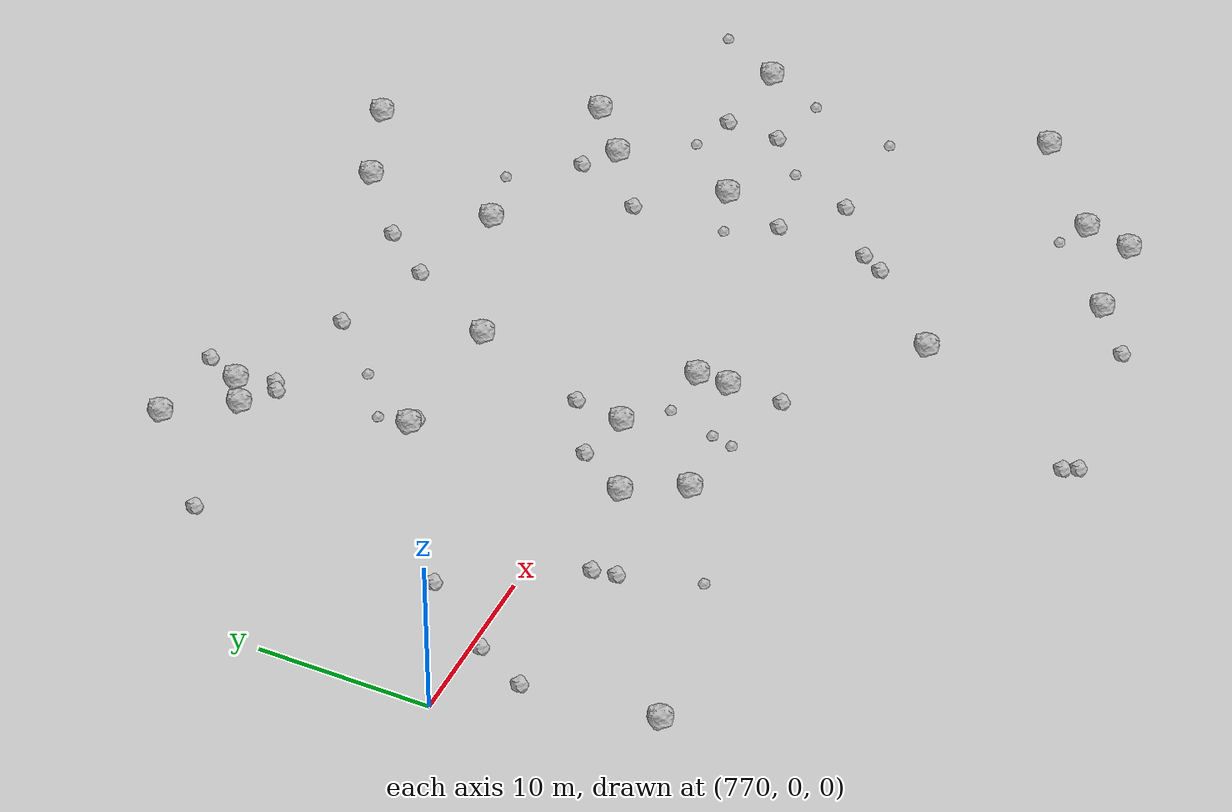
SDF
<sdf version="1.6">
 <world name="default">
  <include><uri>model://sun</uri></include>
  <model name="rock1_20_4">
   <include><uri>model://rock1</uri><pose>825.9372462978623 -11.901936286453378 0.5 0 0 0</pose></include>
  </model>
  <model name="rock1_20_5">
   <include><uri>model://rock1</uri><pose>799.17431795346 -3.766847467530223 0.5 0 0 0</pose></include>
  </model>
  <model name="rock1_20_6">
   <include><uri>model://rock1</uri><pose>788.9031942798171 -2.0370712036232135 0.5 0 0 0</pose></include>
  </model>
  <model name="rock1_20_7">
   <include><uri>model://rock1</uri><pose>783.8780220541647 23.51682267836717 0.5 0 0 0</pose></include>
  </model>
  <model name="rock1_20_8">
   <include><uri>model://rock1</uri><pose>797.2095511144377 10.40197938310444 0.5 0 0 0</pose></include>
  </model>
  <model name="rock1_20_9">
   <include><uri>model://rock1</uri><pose>788.8253533389924 10.740879912818485 0.5 0 0 0</pose></include>
  </model>
  <model name="rock1_20_10">
   <include><uri>model://rock1</uri><pose>814.6861556265256 10.380363406767259 0.5 0 0 0</pose></include>
  </model>
  <model name="rock1_20_11">
   <include><uri>model://rock1</uri><pose>824.8837802428865 5.216177160664145 0.5 0 0 0</pose></include>
  </model>
  <model name="rock1_20_12">
   <include><uri>model://rock1</uri><pose>812.1436011768263 24.353964463514984 0.5 0 0 0</pose></include>
  </model>
  <model name="rock1_20_13">
   <include><uri>model://rock1</uri><pose>793.9989345180148 0.2984716777066474 0.5 0 0 0</pose></include>
  </model>
  <model name="rock1_20_14">
   <include><uri>model://rock1</uri><pose>817.7944896294264 12.983634717679045 0.5 0 0 0</pose></include>
  </model>
  <model name="rock1_20_15">
   <include><uri>model://rock1</uri><pose>774.1349760354863 -11.403000369350082 0.5 0 0 0</pose></include>
  </model>
  <model name="rock1_20_16">
   <include><uri>model://rock1</uri><pose>806.7431501153142 -12.432699851491769 0.5 0 0 0</pose></include>
  </model>
  <model name="rock1_20_17">
   <include><uri>model://rock1</uri><pose>790.7628684323764 -5.3499854065378045 0.5 0 0 0</pose></include>
  </model>
  <model name="rock1_20_18">
   <include><uri>model://rock1</uri><pose>820.0622799877535 -16.63285302988337 0.5 0 0 0</pose></include>
  </model>
  <model name="rock1_20_19">
   <include><uri>model://rock1</uri><pose>814.0228085893079 -20.005498493433933 0.5 0 0 0</pose></include>
  </model>
  <model name="rock1_20_20">
   <include><uri>model://rock1</uri><pose>814.0504746604297 3.0988783384255285 0.5 0 0 0</pose></include>
  </model>
  <model name="rock1_20_21">
   <include><uri>model://rock1</uri><pose>786.3637751371069 19.95070177641515 0.5 0 0 0</pose></include>
  </model>
  <model name="rock1_20_22">
   <include><uri>model://rock1</uri><pose>806.375150658664 14.395136903612851 0.5 0 0 0</pose></include>
  </model>
  <model name="rock1_20_23">
   <include><uri>model://rock1</uri><pose>799.2174895933449 -1.8670236244198684 0.5 0 0 0</pose></include>
  </model>
  <model name="rock1_20_24">
   <include><uri>model://rock1</uri><pose>819.3767595989099 -19.48058166458194 0.5 0 0 0</pose></include>
  </model>
  <model name="rock1_20_25">
   <include><uri>model://rock1</uri><pose>806.8626889871255 22.345400264037522 0.5 0 0 0</pose></include>
  </model>
  <model name="rock1_20_26">
   <include><uri>model://rock1</uri><pose>788.0325851967187 21.05278380150896 0.5 0 0 0</pose></include>
  </model>
  <model name="rock2_20_0">
   <include><uri>model://rock2</uri><pose>774.872094080022 -0.5530847530202685 0.3 0 0 0</pose></include>
  </model>
  <model name="rock2_20_1">
   <include><uri>model://rock2</uri><pose>800.325377647265 15.924882164605222 0.3 0 0 0</pose></include>
  </model>
  <model name="rock2_20_2">
   <include><uri>model://rock2</uri><pose>794.4374098809319 3.293627012973971 0.3 0 0 0</pose></include>
  </model>
  <model name="rock2_20_3">
   <include><uri>model://rock2</uri><pose>773.2569587989786 -3.6326059420062364 0.3 0 0 0</pose></include>
  </model>
  <model name="rock2_20_4">
   <include><uri>model://rock2</uri><pose>794.7559217899977 18.009233699836003 0.3 0 0 0</pose></include>
  </model>
  <model name="rock2_20_5">
   <include><uri>model://rock2</uri><pose>782.6283904408756 -3.315897308668422 0.3 0 0 0</pose></include>
  </model>
  <model name="rock2_20_6">
   <include><uri>model://rock2</uri><pose>800.6610100320255 -23.024784178233638 0.3 0 0 0</pose></include>
  </model>
  <model name="rock2_20_7">
   <include><uri>model://rock2</uri><pose>788.1053284506057 18.62362617775092 0.3 0 0 0</pose></include>
  </model>
  <model name="rock2_20_8">
   <include><uri>model://rock2</uri><pose>778.1904205274116 3.8926096658931897 0.3 0 0 0</pose></include>
  </model>
  <model name="rock2_20_9">
   <include><uri>model://rock2</uri><pose>812.3288550095035 -6.143961679160235 0.3 0 0 0</pose></include>
  </model>
  <model name="rock2_20_10">
   <include><uri>model://rock2</uri><pose>788.9371210458411 23.190919429415246 0.3 0 0 0</pose></include>
  </model>
  <model name="rock2_20_11">
   <include><uri>model://rock2</uri><pose>788.7266275077751 18.98839581616589 0.3 0 0 0</pose></include>
  </model>
  <model name="rock2_20_12">
   <include><uri>model://rock2</uri><pose>799.0909831717587 -6.996528125183101 0.3 0 0 0</pose></include>
  </model>
  <model name="rock2_20_13">
   <include><uri>model://rock2</uri><pose>777.9848978682254 18.2403617526671 0.3 0 0 0</pose></include>
  </model>
  <model name="rock2_20_14">
   <include><uri>model://rock2</uri><pose>815.7311959762854 -3.503313189176925 0.3 0 0 0</pose></include>
  </model>
  <model name="rock2_20_15">
   <include><uri>model://rock2</uri><pose>789.3205904250503 10.580285415951437 0.3 0 0 0</pose></include>
  </model>
  <model name="rock2_20_16">
   <include><uri>model://rock2</uri><pose>801.0741819209625 -23.805963635193855 0.3 0 0 0</pose></include>
  </model>
  <model name="rock2_20_17">
   <include><uri>model://rock2</uri><pose>812.7973623768227 11.803042668443027 0.3 0 0 0</pose></include>
  </model>
  <model name="rock2_20_18">
   <include><uri>model://rock2</uri><pose>811.539868665119 -7.46702926657434 0.3 0 0 0</pose></include>
  </model>
  <model name="rock2_20_19">
   <include><uri>model://rock2</uri><pose>812.5432605441102 -0.7415697362920959 0.3 0 0 0</pose></include>
  </model>
  <model name="rock2_20_20">
   <include><uri>model://rock2</uri><pose>810.6667422673313 7.53418906503817 0.3 0 0 0</pose></include>
  </model>
  <model name="rock2_20_21">
   <include><uri>model://rock2</uri><pose>819.6979522300719 2.566119141616106 0.3 0 0 0</pose></include>
  </model>
  <model name="rock2_20_22">
   <include><uri>model://rock2</uri><pose>819.8584027908867 5.770005732749837 0.3 0 0 0</pose></include>
  </model>
  <model name="rock2_20_23">
   <include><uri>model://rock2</uri><pose>782.8569895221526 -4.677739811802798 0.3 0 0 0</pose></include>
  </model>
  <model name="rock2_20_24">
   <include><uri>model://rock2</uri><pose>802.6937328701493 18.888067393210278 0.3 0 0 0</pose></include>
  </model>
  <model name="rock2_20_25">
   <include><uri>model://rock2</uri><pose>790.7747764315118 1.0217332145571234 0.3 0 0 0</pose></include>
  </model>
  <model name="rock2_20_26">
   <include><uri>model://rock2</uri><pose>810.7786045633312 -22.44858167707867 0.3 0 0 0</pose></include>
  </model>
  <model name="rock3_20_0">
   <include><uri>model://rock3</uri><pose>810.9511890307865 1.9434400501167843 0.2 0 0 0</pose></include>
  </model>
  <model name="rock3_20_1">
   <include><uri>model://rock3</uri><pose>817.2446634744684 0.29400984410818864 0.2 0 0 0</pose></include>
  </model>
  <model name="rock3_20_2">
   <include><uri>model://rock3</uri><pose>818.2079402027891 -15.708185788189088 0.2 0 0 0</pose></include>
  </model>
  <model name="rock3_20_3">
   <include><uri>model://rock3</uri><pose>795.0478716755438 -4.700813811564792 0.2 0 0 0</pose></include>
  </model>
  <model name="rock3_20_4">
   <include><uri>model://rock3</uri><pose>794.7416841730638 -5.986960552885126 0.2 0 0 0</pose></include>
  </model>
  <model name="rock3_20_5">
   <include><uri>model://rock3</uri><pose>810.0007360785686 15.276082193530755 0.2 0 0 0</pose></include>
  </model>
  <model name="rock3_20_6">
   <include><uri>model://rock3</uri><pose>826.958935059516 9.006090257092673 0.2 0 0 0</pose></include>
  </model>
  <model name="rock3_20_7">
   <include><uri>model://rock3</uri><pose>819.7341269659662 -19.730461683097012 0.2 0 0 0</pose></include>
  </model>
  <model name="rock3_20_8">
   <include><uri>model://rock3</uri><pose>821.948950381155 -3.559057105006577 0.2 0 0 0</pose></include>
  </model>
  <model name="rock3_20_9">
   <include><uri>model://rock3</uri><pose>784.2975126376742 -9.183291627222424 0.2 0 0 0</pose></include>
  </model>
  <model name="rock3_20_10">
   <include><uri>model://rock3</uri><pose>795.9579655847187 -1.7640762345068204 0.2 0 0 0</pose></include>
  </model>
  <model name="rock3_20_11">
   <include><uri>model://rock3</uri><pose>791.524178493448 14.673232218621393 0.2 0 0 0</pose></include>
  </model>
  <model name="rock3_20_12">
   <include><uri>model://rock3</uri><pose>817.3190421910766 6.601502846882518 0.2 0 0 0</pose></include>
  </model>
  <model name="rock3_20_13">
   <include><uri>model://rock3</uri><pose>823.3261152299316 1.7093226850455103 0.2 0 0 0</pose></include>
  </model>
  <model name="rock3_20_14">
   <include><uri>model://rock3</uri><pose>788.6387903954338 12.57206818856617 0.2 0 0 0</pose></include>
  </model>
 </world>
</sdf>
